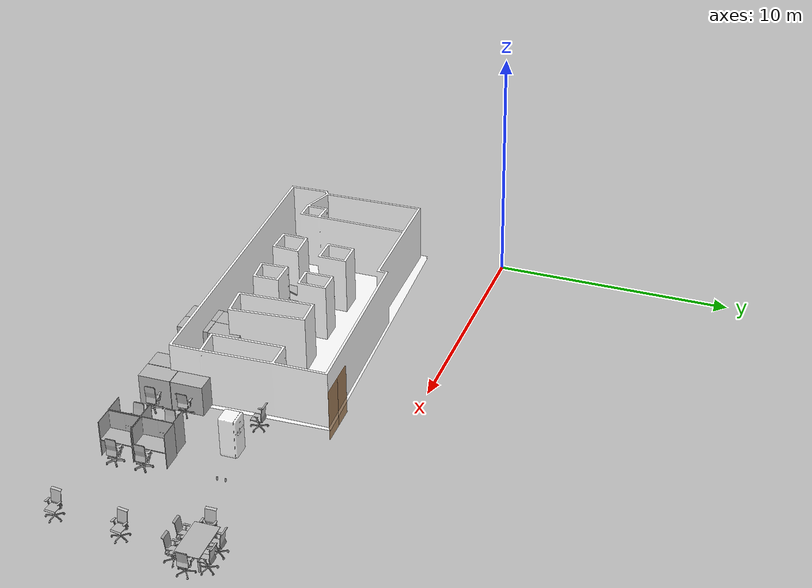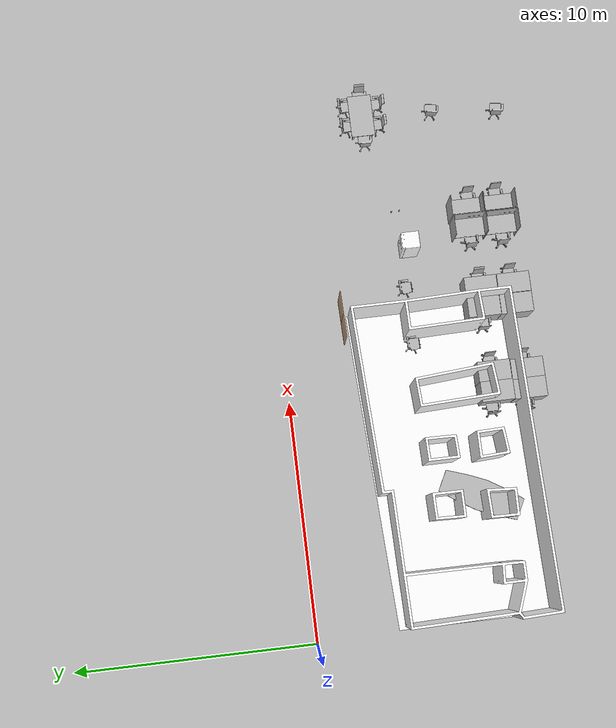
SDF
<sdf version="1.7">
 <world name="sim_world">
  <physics name="10ms" type="ode">
   <max_step_size>0.01</max_step_size>
   <real_time_factor>1.0</real_time_factor>
  </physics>
  <plugin filename="libignition-gazebo-physics-system.so" name="ignition::gazebo::systems::Physics"/>
  <plugin filename="libignition-gazebo-user-commands-system.so" name="ignition::gazebo::systems::UserCommands"/>
  <plugin filename="libignition-gazebo-scene-broadcaster-system.so" name="ignition::gazebo::systems::SceneBroadcaster"/>
  <scene><ambient>1 1 1</ambient><background>0.8 0.8 0.8</background><grid>false</grid></scene>
  <light type="directional" name="sun">
   <pose>0 0 10 0 0 0</pose>
   <diffuse>1 1 1 1</diffuse>
   <specular>0.2 0.2 0.2 1</specular>
   <attenuation>
    <range>1000</range>
    <constant>0.09</constant>
    <linear>0.001</linear>
    <quadratic>0.001</quadratic>
   </attenuation>
   <direction>-0.5 0.1 -0.9</direction>
  </light>
  <include>
   <name>Fridge</name>
   <uri>model://Fridge</uri>
   <pose>15.988145328136557 -5.750839262070037 0.0 0 0 1.5708</pose>
   <static>True</static>
  </include>
  <include>
   <name>OfficeChairGrey</name>
   <uri>model://OfficeChairGrey</uri>
   <pose>14.25575798385424 -5.546939351620108 0.0 0 0 0.0166</pose>
   <static>True</static>
  </include>
  <include>
   <name>SmallCubicle</name>
   <uri>model://SmallCubicle</uri>
   <pose>10.225911509914997 -8.526615785243605 0.0 0 0 1.5708</pose>
   <static>True</static>
  </include>
  <include>
   <name>SmallCubicle_2</name>
   <uri>model://SmallCubicle</uri>
   <pose>10.183296208528093 -9.890381619078704 0.0 0 0 1.5708</pose>
   <static>True</static>
  </include>
  <include>
   <name>SmallCubicle_3</name>
   <uri>model://SmallCubicle</uri>
   <pose>13.810743847321321 -9.831106223705028 0.0 0 0 1.5708</pose>
   <static>True</static>
  </include>
  <include>
   <name>SmallCubicle_4</name>
   <uri>model://SmallCubicle</uri>
   <pose>9.391493072925952 -8.541963727519024 0.0 0 0 -1.5708</pose>
   <static>True</static>
  </include>
  <include>
   <name>SmallCubicle_5</name>
   <uri>model://SmallCubicle</uri>
   <pose>9.36992299189023 -9.890178447200816 0.0 0 0 4.7124</pose>
   <static>True</static>
  </include>
  <include>
   <name>SmallCubicle_6</name>
   <uri>model://SmallCubicle</uri>
   <pose>12.9440464782329 -9.827406802428492 0.0 0 0 4.7124</pose>
   <static>True</static>
  </include>
  <include>
   <name>SmallCubicle_7</name>
   <uri>model://SmallCubicle</uri>
   <pose>12.955153207557416 -8.471810171183453 0.0 0 0 -1.5708</pose>
   <static>True</static>
  </include>
  <include>
   <name>SmallCubicle_8</name>
   <uri>model://SmallCubicle</uri>
   <pose>13.810743847321321 -8.460694976364024 0.0 0 0 1.5708</pose>
   <static>True</static>
  </include>
  <include>
   <name>BigCubicle</name>
   <uri>model://BigCubicle</uri>
   <pose>17.319691488336666 -8.342677511796122 0.0 0 0 1.5708</pose>
   <static>True</static>
  </include>
  <include>
   <name>BigCubicle_2</name>
   <uri>model://BigCubicle</uri>
   <pose>17.350328114423117 -9.715696131570017 0.0 0 0 1.5708</pose>
   <static>True</static>
  </include>
  <include>
   <name>BigCubicle_3</name>
   <uri>model://BigCubicle</uri>
   <pose>16.480625494640943 -9.730028214455997 0.0 0 0 -1.5708</pose>
   <static>True</static>
  </include>
  <include>
   <name>BigCubicle_4</name>
   <uri>model://BigCubicle</uri>
   <pose>16.48540849926621 -8.382482268872248 0.0 0 0 -1.5708</pose>
   <static>True</static>
  </include>
  <include>
   <name>OfficeChairGrey_2</name>
   <uri>model://OfficeChairGrey</uri>
   <pose>21.541857075686252 -3.9531660210265356 0.0 0 0 0.0</pose>
   <static>True</static>
  </include>
  <include>
   <name>OfficeChairGrey_3</name>
   <uri>model://OfficeChairGrey</uri>
   <pose>22.4192463648485 -3.9531660210265356 0.0 0 0 0.0</pose>
   <static>True</static>
  </include>
  <include>
   <name>OfficeChairGrey_4</name>
   <uri>model://OfficeChairGrey</uri>
   <pose>22.696745288063177 -4.5000031303607395 0.0 0 0 -1.5708</pose>
   <static>True</static>
  </include>
  <include>
   <name>OfficeChairGrey_5</name>
   <uri>model://OfficeChairGrey</uri>
   <pose>22.382514582425422 -5.03459913405222 0.0 0 0 3.1416</pose>
   <static>True</static>
  </include>
  <include>
   <name>OfficeChairGrey_6</name>
   <uri>model://OfficeChairGrey</uri>
   <pose>21.4847234505253 -5.026438396957071 0.0 0 0 3.1416</pose>
   <static>True</static>
  </include>
  <include>
   <name>OfficeChairGrey_7</name>
   <uri>model://OfficeChairGrey</uri>
   <pose>20.954207815381395 -4.508163867455886 0.0 0 0 1.5708</pose>
   <static>True</static>
  </include>
  <include>
   <name>OfficeChairGrey_8</name>
   <uri>model://OfficeChairGrey</uri>
   <pose>14.205616857490586 -8.518074100877419 0.0 0 0 -1.5708</pose>
   <static>True</static>
  </include>
  <include>
   <name>OfficeChairGrey_9</name>
   <uri>model://OfficeChairGrey</uri>
   <pose>21.993355781321743 -7.517359481837455 0.0 0 0 1.419</pose>
   <static>True</static>
  </include>
  <include>
   <name>OfficeChairGrey_10</name>
   <uri>model://OfficeChairGrey</uri>
   <pose>21.731416437755286 -10.29278045422472 0.0 0 0 1.4599</pose>
   <static>True</static>
  </include>
  <include>
   <name>OfficeChairBlue</name>
   <uri>model://OfficeChairBlue</uri>
   <pose>8.867969936579339 -8.374719410037965 0.0 0 0 1.5708</pose>
   <static>True</static>
  </include>
  <include>
   <name>OfficeChairBlue_2</name>
   <uri>model://OfficeChairBlue</uri>
   <pose>8.853637853693357 -9.784393622780726 0.0 0 0 1.5708</pose>
   <static>True</static>
  </include>
  <include>
   <name>OfficeChairBlue_3</name>
   <uri>model://OfficeChairBlue</uri>
   <pose>10.702933682710107 -8.503742017991438 0.0 0 0 4.7124</pose>
   <static>True</static>
  </include>
  <include>
   <name>OfficeChairBlue_4</name>
   <uri>model://OfficeChairBlue</uri>
   <pose>10.698159143579753 -9.870411516581347 0.0 0 0 4.7124</pose>
   <static>True</static>
  </include>
  <include>
   <name>OfficeChairBlue_5</name>
   <uri>model://OfficeChairBlue</uri>
   <pose>12.456662539665526 -8.470294847594209 0.0 0 0 1.5708</pose>
   <static>True</static>
  </include>
  <include>
   <name>OfficeChairBlue_6</name>
   <uri>model://OfficeChairBlue</uri>
   <pose>14.310741373307545 -9.832181341558849 0.0 0 0 -1.5708</pose>
   <static>True</static>
  </include>
  <include>
   <name>OfficeChairBlue_7</name>
   <uri>model://OfficeChairBlue</uri>
   <pose>16.02188879085571 -9.773041394103762 0.0 0 0 1.5708</pose>
   <static>True</static>
  </include>
  <include>
   <name>OfficeChairBlue_8</name>
   <uri>model://OfficeChairBlue</uri>
   <pose>16.041003878366954 -8.435044526780727 0.0 0 0 1.5708</pose>
   <static>True</static>
  </include>
  <include>
   <name>OfficeChairBlue_9</name>
   <uri>model://OfficeChairBlue</uri>
   <pose>17.804290279077996 -8.544952047222951 0.0 0 0 -1.5708</pose>
   <static>True</static>
  </include>
  <include>
   <name>OfficeChairBlue_10</name>
   <uri>model://OfficeChairBlue</uri>
   <pose>17.83296291034487 -9.72525367532564 0.0 0 0 -1.5708</pose>
   <static>True</static>
  </include>
  <include>
   <name>OfficeChairGrey_11</name>
   <uri>model://OfficeChairGrey</uri>
   <pose>11.842888762062305 -5.564640701481056 0.0 0 0 0.016</pose>
   <static>True</static>
  </include>
  <include>
   <name>ConfTable</name>
   <uri>model://ConfTable</uri>
   <pose>5.248606845427052 -7.381911563245789 0.0 0 0 1.1017</pose>
   <static>True</static>
  </include>
  <include>
   <name>RecTable</name>
   <uri>model://RecTable</uri>
   <pose>21.876489624061872 -4.4673517164852345 0.0 0 0 0.0</pose>
   <static>True</static>
  </include>
  <include>
   <name>coke_dispenser</name>
   <uri>model://TeleportDispenser</uri>
   <pose>17.704388973621732 -5.289418996397703 0.0 0 0 1.5708</pose>
   <static>True</static>
  </include>
  <include>
   <name>coke_dispenser_2</name>
   <uri>model://TeleportDispenser</uri>
   <pose>17.706336037451486 -5.624957352728908 0.0 0 0 1.5708</pose>
   <static>True</static>
  </include>
  <include>
   <name>Coke</name>
   <uri>model://Coke</uri>
   <pose>17.704388973621732 -5.291535370125699 0.0 0 0 1.5708</pose>
   <static>False</static>
  </include>
  <include>
   <name>Coke_2</name>
   <uri>model://Coke</uri>
   <pose>17.715470306461512 -5.629520254486464 0.0 0 0 1.5708</pose>
   <static>False</static>
  </include>
  <include>
   <name>coke_ingestor</name>
   <uri>model://TeleportIngestor</uri>
   <pose>22.542656349675333 -7.610446063889577 0.805 0 0 1.5708</pose>
   <static>True</static>
  </include>
  <include>
   <name>coke_ingestor_2</name>
   <uri>model://TeleportIngestor</uri>
   <pose>5.661375911840242 -5.958557110725269 0.8 0 0 1.5708</pose>
   <static>True</static>
  </include>
  <model name="main_door">
   <pose>13.131950836046645 -2.579487092649509 0.0 0 0 -3.120269390429785</pose>
   <link name="right">
    <pose>0.473864332736097 0 1.11 0 0 0</pose>
    <visual name="right_visual">
     <geometry><box><size>0.937728665472194 0.03 2.2</size></box></geometry>
     <material>
      <ambient>0.5 0.25 0 0.6</ambient>
      <diffuse>0.5 0.25 0 0.6</diffuse>
      <pbr><metal><metalness>0.0</metalness></metal></pbr>
     </material>
    </visual>
    <collision name="right_collision">
     <geometry><box><size>0.937728665472194 0.03 2.2</size></box></geometry>
     <surface><contact><collide_bitmask>0x02</collide_bitmask></contact></surface>
    </collision>
    <inertial>
     <mass>50.0</mass>
     <inertia><ixx>20.17041666666667</ixx><iyy>23.83056270853443</iyy><izz>3.6676460418677586</izz></inertia>
    </inertial>
   </link>
   <joint name="right_joint" type="revolute">
    <parent>world</parent>
    <child>right</child>
    <axis><xyz>0 0 -1</xyz><limit><lower>0</lower><upper>1.57</upper></limit></axis>
    <pose>0.473864332736097 0 0 0 0 0</pose>
   </joint>
   <link name="left">
    <pose>-0.473864332736097 0 1.11 0 0 0</pose>
    <visual name="left_visual">
     <geometry><box><size>0.937728665472194 0.03 2.2</size></box></geometry>
     <material>
      <ambient>0.5 0.25 0 0.6</ambient>
      <diffuse>0.5 0.25 0 0.6</diffuse>
      <pbr><metal><metalness>0.0</metalness></metal></pbr>
     </material>
    </visual>
    <collision name="left_collision">
     <geometry><box><size>0.937728665472194 0.03 2.2</size></box></geometry>
     <surface><contact><collide_bitmask>0x02</collide_bitmask></contact></surface>
    </collision>
    <inertial>
     <mass>50.0</mass>
     <inertia><ixx>20.17041666666667</ixx><iyy>23.83056270853443</iyy><izz>3.6676460418677586</izz></inertia>
    </inertial>
   </link>
   <joint name="left_joint" type="revolute">
    <parent>world</parent>
    <child>left</child>
    <axis><xyz>0 0 -1</xyz><limit><lower>-1.57</lower><upper>0</upper></limit></axis>
    <pose>-0.473864332736097 0 0 0 0 0</pose>
   </joint>
   <plugin name="door" filename="libdoor.so">
    <v_max_door>0.5</v_max_door>
    <a_max_door>0.3</a_max_door>
    <a_nom_door>0.15</a_nom_door>
    <dx_min_door>0.01</dx_min_door>
    <f_max_door>500.0</f_max_door>
    <door name="main_door" type="DoubleSwingDoor" left_joint_name="left_joint" right_joint_name="right_joint"/>
   </plugin>
  </model>
  <include><name>building_L1</name><uri>model://building_L1</uri></include>
  <rmf_charger_waypoints name="charger_waypoints">
   <rmf_vertex name="c2" x="18.824941138635673" y="-11.028474289550266" level="L1"/>
   <rmf_vertex name="c0" x="18.824941138635673" y="-4.013271034901588" level="L1"/>
   <rmf_vertex name="c1" x="9.610470029814115" y="-4.013271034901588" level="L1"/>
  </rmf_charger_waypoints>
 </world>
</sdf>

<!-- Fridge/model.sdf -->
<sdf version="1.6">
  <model name="Fridge">
    <static>true</static>
    <link name="base_link">
      <visual name="visual">
        <geometry>
          <mesh>
            <uri>meshes/fridge.dae</uri>
          </mesh>
        </geometry>
        <material>
          <diffuse>1.0 1.0 1.0</diffuse>
          <specular>1.0 1.0 1.0</specular>
          <pbr>
            <metal>
              <albedo_map>materials/textures/Fridge_Albedo.jpg</albedo_map>
              <normal_map>materials/textures/Fridge_Normal.png</normal_map>
              <roughness_map>materials/textures/Fridge_Roughness.jpg</roughness_map>
              <metalness_map>materials/textures/Fridge_Metalness.jpg</metalness_map>
            </metal>
          </pbr>
        </material>
      </visual>
      <collision name="Box001">
        <pose>0.0 0.0 0.867923 0.0 0.0 0.0</pose>
        <geometry>
          <box>
            <size>0.734673 0.7239 1.73585</size>
          </box>
        </geometry>
      </collision>
    </link>
  </model>
</sdf>

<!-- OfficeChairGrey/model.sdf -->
<sdf version="1.6">
  <model name="OfficeChairGrey">
   <static>true</static>
    <link name="body">
      <pose>0 0 0 0 0 0</pose>

      <visual name="visual">
        <geometry>
          <mesh>
            <uri>model://OfficeChairGrey/meshes/OfficeChairGrey.obj</uri>
          </mesh>
        </geometry>
      </visual>

      <collision name="collision">
        <geometry>
          <mesh>
            <uri>model://OfficeChairGrey/meshes/OfficeChairGrey_Col.obj</uri>
          </mesh>
        </geometry>
      </collision>

    </link>
  </model>
</sdf>

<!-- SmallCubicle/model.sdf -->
<sdf version="1.6">
  <model name="SmallCubicle">
   <static>true</static>
    <link name="body">
      <pose>0 0 0 0 0 0</pose>

      <visual name="visual">
        <geometry>
          <mesh>
            <uri>model://SmallCubicle/meshes/SmallCubicle.obj</uri>
          </mesh>
        </geometry>
      </visual>

      <collision name="collision">
        <geometry>
          <mesh>
            <uri>model://SmallCubicle/meshes/SmallCubicle_Col.obj</uri>
          </mesh>
        </geometry>
      </collision>

    </link>
  </model>
</sdf>

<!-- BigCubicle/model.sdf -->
<sdf version="1.6">
  <model name="BigCubicle">
   <static>true</static>
    <link name="body">
      <pose>0 0 0 0 0 0</pose>

      <visual name="visual">
        <geometry>
          <mesh>
            <uri>model://BigCubicle/meshes/BigCubicle.obj</uri>
          </mesh>
        </geometry>
      </visual>

      <collision name="collision">
        <geometry>
          <mesh>
            <uri>model://BigCubicle/meshes/BigCubicle_Col.obj</uri>
          </mesh>
        </geometry>
      </collision>

    </link>
  </model>
</sdf>

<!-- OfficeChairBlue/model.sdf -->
<sdf version="1.6">
  <model name="OfficeChairBlue">
   <static>true</static>
    <link name="body">
      <pose>0 0 0 0 0 0</pose>

      <visual name="visual">
        <geometry>
          <mesh>
            <uri>model://OfficeChairBlue/meshes/OfficeChairBlue.obj</uri>
          </mesh>
        </geometry>
      </visual>

      <collision name="collision">
        <geometry>
          <mesh>
            <uri>model://OfficeChairBlue/meshes/OfficeChairBlue_Col.obj</uri>
          </mesh>
        </geometry>
      </collision>

    </link>
  </model>
</sdf>

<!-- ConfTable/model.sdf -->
<sdf version="1.6">
  <model name="ConfTable">
   <static>true</static>
    <link name="body">
      <pose>0 0 0 0 0 0</pose>

      <visual name="visual">
        <geometry>
          <mesh>
            <uri>model://ConfTable/meshes/ConfTable.obj</uri>
          </mesh>
        </geometry>
      </visual>

      <collision name="collision">
        <geometry>
          <mesh>
            <uri>model://ConfTable/meshes/ConfTable_Col.obj</uri>
          </mesh>
        </geometry>
      </collision>

    </link>
  </model>
</sdf>

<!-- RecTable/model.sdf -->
<sdf version="1.6">
  <model name="RecTable">
   <static>true</static>
    <link name="body">
      <pose>0 0 0 0 0 0</pose>

      <visual name="visual">
        <geometry>
          <mesh>
            <uri>model://RecTable/meshes/RecTable.obj</uri>
          </mesh>
        </geometry>
      </visual>

      <collision name="collision">
        <geometry>
          <mesh>
            <uri>model://RecTable/meshes/RecTable_Col.obj</uri>
          </mesh>
        </geometry>
      </collision>

    </link>
  </model>
</sdf>

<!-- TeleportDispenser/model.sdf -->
<sdf version="1.6">
  <model name="TeleportDispenser">
    <pose>0.0 0.0 0.0 0.0 0.0 0.0</pose>
    <static>true</static>

    <link name="visual_link">
      <pose>0.0 0.0 0.05 0.0 0.0 0.0</pose>
      <visual name="visual">
        <geometry>
          <box>
            <size>0.1 0.1 0.1</size>
          </box>
        </geometry>
        <material>
          <ambient>128 192 210 0.1</ambient>
          <diffuse>128 192 210 0.1</diffuse>
        </material>
      </visual>
    </link>

    <plugin name="teleport_dispenser" filename="libteleport_dispenser.so">
    </plugin>

  </model>
</sdf>

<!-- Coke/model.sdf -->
<sdf version="1.6">
  <model name='Coke'>
    <static>true</static>
    <link name="body">
      <pose>0 0 0 0 0 0</pose>

        <visual name="visual">
          <geometry>
            <mesh><uri>model://Coke/meshes/coke.obj</uri></mesh>
          </geometry>
        </visual>

        <collision name="collision">
          <geometry>
            <mesh><uri>model://Coke/meshes/coke.obj</uri></mesh>
          </geometry>
        </collision>

        <!-- TODO: Replace with accurate values of mass and inertia -->
        <inertial>
          <mass>1.0</mass>
          <inertia>
            <ixx>0.003366666666666667</ixx>
            <iyy>0.0008666666666666667</iyy>
            <izz>0.0041666666666666675</izz>
          </inertia>
        </inertial>

    </link>

  </model>
</sdf>

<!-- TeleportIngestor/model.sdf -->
<sdf version="1.6">
  <model name="TeleportIngestor">
    <pose>0.0 0.0 0.0 0.0 0.0 0.0</pose>
    <static>true</static>

    <link name="visual_link">
      <pose>0.0 0.0 0.05 0.0 0.0 0.0</pose>
      <visual name="visual">
        <geometry>
          <box>
            <size>0.1 0.1 0.1</size>
          </box>
        </geometry>
        <material>
          <ambient>128 192 210 0.1</ambient>
          <diffuse>128 192 210 0.1</diffuse>
        </material>
      </visual>
    </link>

    <plugin name="teleport_ingestor" filename="libteleport_ingestor.so">
    </plugin>

  </model>
</sdf>

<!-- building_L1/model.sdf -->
<sdf version="1.7">
  <model name="building_L1">
    <static>true</static>
    <link name="floor_1">
      <visual name="visual">
        <geometry>
          <mesh>
            <uri>model://building_L1/meshes/floor_1.obj</uri>
          </mesh>
        </geometry>
        <material>
          <diffuse>1.0 1.0 1.0</diffuse>
          <specular>0.1 0.1 0.1</specular>
          <pbr>
            <metal>
              <metalness>0.0</metalness>
              <albedo_map>model://building_L1/meshes/blue_linoleum.png</albedo_map>
            </metal>
          </pbr>
          <script>
            <uri>model://building_L1/meshes/</uri>
            <name>floor_1_Diffuse</name>
          </script>
        </material>
      </visual>
      <collision name="collision">
        <geometry>
          <mesh>
            <uri>model://building_L1/meshes/floor_1.obj</uri>
          </mesh>
        </geometry>
        <surface>
          <contact>
            <collide_bitmask>0x01</collide_bitmask>
          </contact>
        </surface>
      </collision>
    </link>
    <link name="wall_1">
      <visual name="wall_1">
        <geometry>
          <mesh>
            <uri>model://building_L1/meshes/wall_1.obj</uri>
          </mesh>
        </geometry>
        <transparency>0.0</transparency>
        <material>
          <diffuse>1.0 1.0 1.0</diffuse>
          <specular>0.1 0.1 0.1</specular>
          <pbr>
            <metal>
              <metalness>0.0</metalness>
              <albedo_map>model://building_L1/meshes/default.png</albedo_map>
            </metal>
          </pbr>
          <script>
            <uri>model://building_L1/meshes/</uri>
            <name>wall_1_Diffuse</name>
          </script>
        </material>
      </visual>
      <collision name="collision">
        <geometry>
          <mesh>
            <uri>model://building_L1/meshes/wall_1.obj</uri>
          </mesh>
        </geometry>
        <surface>
          <contact>
            <collide_bitmask>0x01</collide_bitmask>
          </contact>
        </surface>
      </collision>
      <pose>0.1884936815912417 -9.733227650610877 0 0 0 0</pose>
    </link>
  </model>
</sdf>
